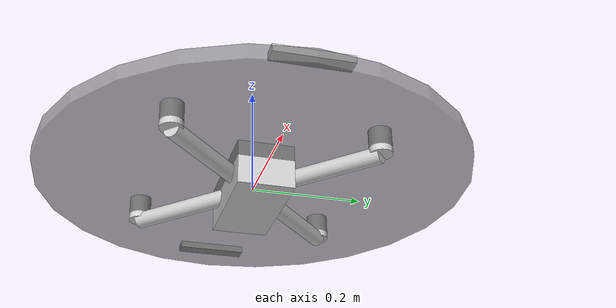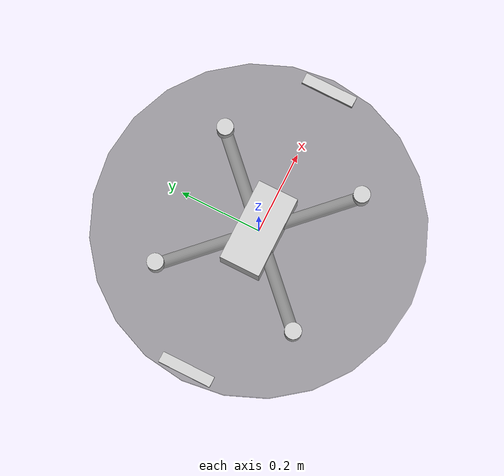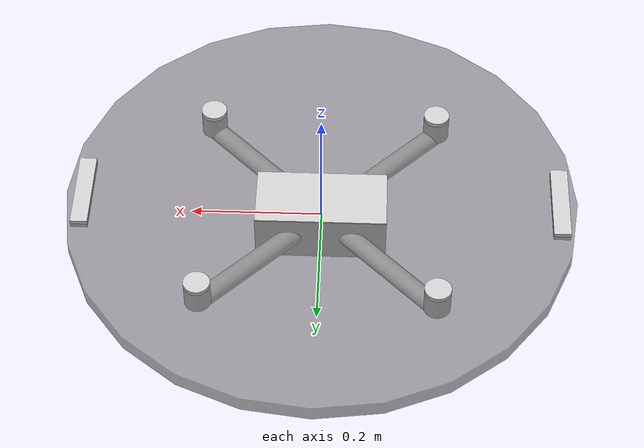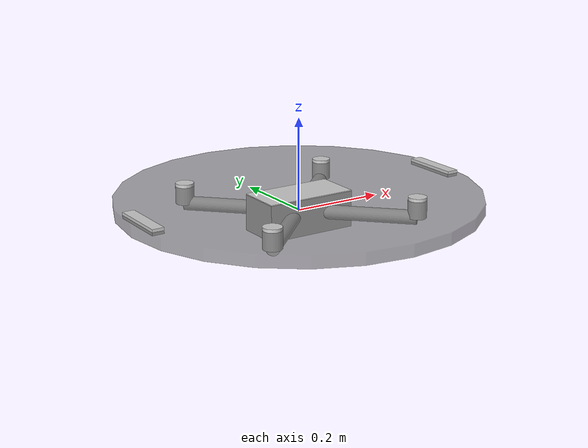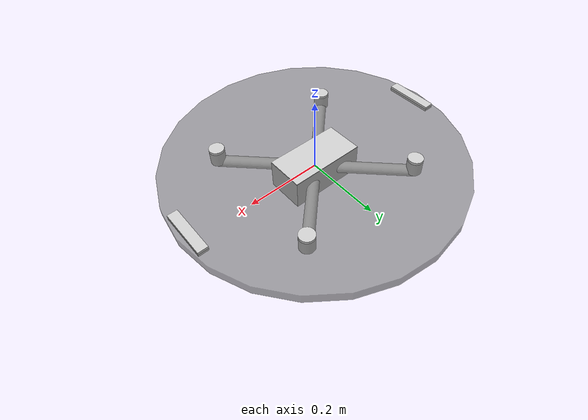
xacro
<?xml version="1.0"?>
<robot xmlns:xacro="http://www.ros.org/wiki/xacro" name="px4_quadcopter_with_propeller_guard">

  <!-- Include the base quadcopter model -->
  <xacro:include filename="$(find px4_msgs_bridge)/urdf/quadcopter.urdf.xacro" />

  <!-- Additional materials for propeller guard -->
  <material name="guard_transparent">
    <color rgba="0.4 0.4 0.4 0.6"/>
  </material>

  <!-- Propeller Guard Link - Single protective ring around entire drone -->
  <link name="propeller_guard">
    <visual>
      <!-- Main guard ring - matches SDF dimensions -->
      <geometry>
        <cylinder radius="0.39" length="0.026"/>
      </geometry>
      <origin xyz="0 0 0" rpy="0 0 0"/>
      <material name="guard_transparent"/>
    </visual>

    <visual>
      <!-- Guard marker 1 -->
      <geometry>
        <box size="0.026 0.13 0.013"/>
      </geometry>
      <origin xyz="0.364 0 0.013" rpy="0 0 0"/>
      <material name="light_grey"/>
    </visual>

    <visual>
      <!-- Guard marker 2 -->
      <geometry>
        <box size="0.026 0.13 0.013"/>
      </geometry>
      <origin xyz="-0.364 0 0.013" rpy="0 0 0"/>
      <material name="light_grey"/>
    </visual>

    <collision>
      <geometry>
        <cylinder radius="0.39" length="0.026"/>
      </geometry>
      <origin xyz="0 0 0" rpy="0 0 0"/>
    </collision>

    <inertial>
      <mass value="0.1"/>
      <origin xyz="0 0 0" rpy="0 0 0"/>
      <inertia ixx="0.001" ixy="0.0" ixz="0.0"
               iyy="0.001" iyz="0.0"
               izz="0.001"/>
    </inertial>
  </link>

  <!-- Revolute joint: base_link -> propeller_guard (direct connection) -->
  <joint name="propeller_guard_joint" type="revolute">
    <parent link="base_link"/>
    <child link="propeller_guard"/>
    <origin xyz="0 0 0.025" rpy="0 0 0"/>
    <axis xyz="0 0 1"/>
    <limit lower="-3.14159" upper="3.14159" effort="1.0" velocity="10.0"/>
    <dynamics damping="0.001" friction="0.001"/>
  </joint>

</robot>

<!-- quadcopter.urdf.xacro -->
<robot xmlns:xacro="http://www.ros.org/wiki/xacro" name="px4_quadcopter">

  <!-- Parameters -->
  <xacro:property name="body_radius" value="0.15"/>
  <xacro:property name="body_height" value="0.08"/>
  <xacro:property name="arm_length" value="0.25"/>
  <xacro:property name="arm_width" value="0.03"/>
  <xacro:property name="prop_radius" value="0.12"/>
  <xacro:property name="prop_height" value="0.02"/>

  <!-- Materials -->
  <material name="light_grey">
    <color rgba="0.8 0.8 0.8 1.0"/>
  </material>

  <material name="dark_grey_transparent">
    <color rgba="0.4 0.4 0.4 0.6"/>
  </material>

  <!-- Base link (main body and arms) -->
  <link name="base_link">
    <visual>
      <!-- Main body -->
      <geometry>
        <box size="0.20 0.10 ${body_height}"/>
      </geometry>
      <origin xyz="0 0 0" rpy="0 0 0"/>
      <material name="light_grey"/>
    </visual>

    <visual>
      <!-- Front-Right arm -->
      <geometry>
        <cylinder radius="${arm_width/2}" length="${arm_length}"/>
      </geometry>
      <origin xyz="${arm_length/2*0.707} -${arm_length/2*0.707} 0" rpy="0 1.5708 -0.785398"/>
      <material name="light_grey"/>
    </visual>

    <visual>
      <!-- Front-Right motor mount -->
      <geometry>
        <cylinder radius="${arm_width/1.5}" length="${arm_width*1.5}"/>
      </geometry>
      <origin xyz="${arm_length*0.707} -${arm_length*0.707} ${arm_width*0.75}" rpy="0 0 0"/>
      <material name="light_grey"/>
    </visual>

    <visual>
      <!-- Back-Right arm -->
      <geometry>
        <cylinder radius="${arm_width/2}" length="${arm_length}"/>
      </geometry>
      <origin xyz="-${arm_length/2*0.707} -${arm_length/2*0.707} 0" rpy="0 1.5708 0.785398"/>
      <material name="light_grey"/>
    </visual>

    <visual>
      <!-- Back-Right motor mount -->
      <geometry>
        <cylinder radius="${arm_width/1.5}" length="${arm_width*1.5}"/>
      </geometry>
      <origin xyz="-${arm_length*0.707} -${arm_length*0.707} ${arm_width*0.75}" rpy="0 0 0"/>
      <material name="light_grey"/>
    </visual>

    <visual>
      <!-- Back-Left arm -->
      <geometry>
        <cylinder radius="${arm_width/2}" length="${arm_length}"/>
      </geometry>
      <origin xyz="-${arm_length/2*0.707} ${arm_length/2*0.707} 0" rpy="0 1.5708 -0.785398"/>
      <material name="light_grey"/>
    </visual>

    <visual>
      <!-- Back-Left motor mount -->
      <geometry>
        <cylinder radius="${arm_width/1.5}" length="${arm_width*1.5}"/>
      </geometry>
      <origin xyz="-${arm_length*0.707} ${arm_length*0.707} ${arm_width*0.75}" rpy="0 0 0"/>
      <material name="light_grey"/>
    </visual>

    <visual>
      <!-- Front-Left arm -->
      <geometry>
        <cylinder radius="${arm_width/2}" length="${arm_length}"/>
      </geometry>
      <origin xyz="${arm_length/2*0.707} ${arm_length/2*0.707} 0" rpy="0 1.5708 0.785398"/>
      <material name="light_grey"/>
    </visual>

    <visual>
      <!-- Front-Left motor mount -->
      <geometry>
        <cylinder radius="${arm_width/1.5}" length="${arm_width*1.5}"/>
      </geometry>
      <origin xyz="${arm_length*0.707} ${arm_length*0.707} ${arm_width*0.75}" rpy="0 0 0"/>
      <material name="light_grey"/>
    </visual>

    <!-- Collision (single rectangular body) -->
    <collision>
      <geometry>
        <box size="0.20 0.10 ${body_height}"/>
      </geometry>
      <origin xyz="0 0 0" rpy="0 0 0"/>
    </collision>

    <!-- Inertial properties -->
    <inertial>
      <mass value="1.5"/>
      <origin xyz="0 0 0" rpy="0 0 0"/>
      <inertia ixx="0.0347563" ixy="0.0" ixz="0.0"
               iyy="0.0347563" iyz="0.0"
               izz="0.0168750"/>
    </inertial>
  </link>

  <!-- Propellers -->
  <link name="front_right_propeller">
    <visual>
      <geometry>
        <cylinder radius="${prop_radius}" length="${prop_height}"/>
      </geometry>
      <origin xyz="0 0 0" rpy="0 0 0"/>
      <material name="dark_grey_transparent"/>
    </visual>
  </link>

  <link name="front_left_propeller">
    <visual>
      <geometry>
        <cylinder radius="${prop_radius}" length="${prop_height}"/>
      </geometry>
      <origin xyz="0 0 0" rpy="0 0 0"/>
      <material name="dark_grey_transparent"/>
    </visual>
  </link>

  <link name="back_right_propeller">
    <visual>
      <geometry>
        <cylinder radius="${prop_radius}" length="${prop_height}"/>
      </geometry>
      <origin xyz="0 0 0" rpy="0 0 0"/>
      <material name="dark_grey_transparent"/>
    </visual>
  </link>

  <link name="back_left_propeller">
    <visual>
      <geometry>
        <cylinder radius="${prop_radius}" length="${prop_height}"/>
      </geometry>
      <origin xyz="0 0 0" rpy="0 0 0"/>
      <material name="dark_grey_transparent"/>
    </visual>
  </link>

  <!-- Joints to position propellers -->
  <joint name="front_right_prop_joint" type="fixed">
    <parent link="base_link"/>
    <child link="front_right_propeller"/>
    <origin xyz="${arm_length*0.707} -${arm_length*0.707} ${prop_height/2 + arm_width/2}" rpy="0 0 0"/>
  </joint>

  <joint name="front_left_prop_joint" type="fixed">
    <parent link="base_link"/>
    <child link="front_left_propeller"/>
    <origin xyz="${arm_length*0.707} ${arm_length*0.707} ${prop_height/2 + arm_width/2}" rpy="0 0 0"/>
  </joint>

  <joint name="back_right_prop_joint" type="fixed">
    <parent link="base_link"/>
    <child link="back_right_propeller"/>
    <origin xyz="-${arm_length*0.707} -${arm_length*0.707} ${prop_height/2 + arm_width/2}" rpy="0 0 0"/>
  </joint>

  <joint name="back_left_prop_joint" type="fixed">
    <parent link="base_link"/>
    <child link="back_left_propeller"/>
    <origin xyz="-${arm_length*0.707} ${arm_length*0.707} ${prop_height/2 + arm_width/2}" rpy="0 0 0"/>
  </joint>

  <!-- IMU link -->
  <link name="imu_link"/>
  <joint name="imu_joint" type="fixed">
    <parent link="base_link"/>
    <child link="imu_link"/>
    <origin xyz="0 0 0" rpy="0 0 0"/>
  </joint>

</robot>
